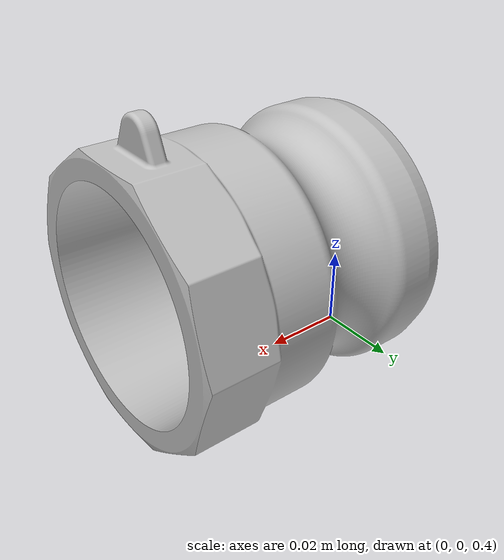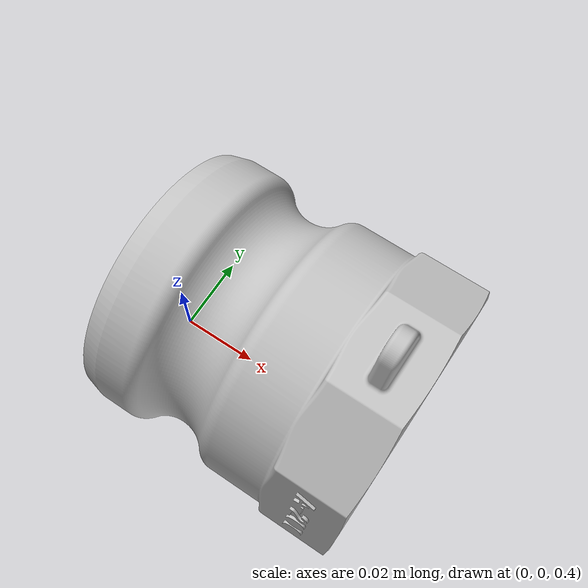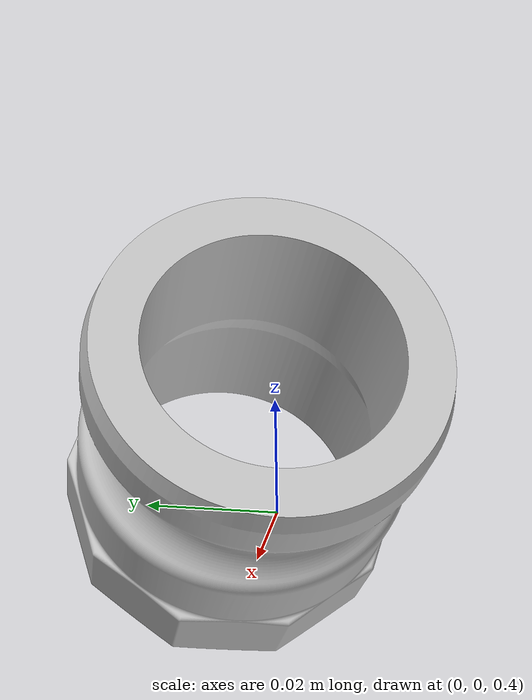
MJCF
<mujoco model="table_with_stl">
      <option gravity="0 0 0" />
  <compiler angle="degree" coordinate="local" />

  <asset>
    <!-- STL mesh — scale 0.001 assumes STL is in mm; adjust if needed -->
    <mesh name="mesh_A" file="../A-200MAOPI.stl" scale="0.001 0.001 0.001" />
    <!-- Table surface texture -->
    <texture name="tex_table" type="2d" builtin="checker" width="512" height="512"
             rgb1="0.55 0.45 0.35" rgb2="0.65 0.55 0.45" />
    <material name="mat_table" texture="tex_table" reflectance="0.05" />

    <!-- Floor texture -->
    <texture name="tex_floor" type="2d" builtin="checker" width="512" height="512"
             rgb1="0.25 0.25 0.25" rgb2="0.45 0.45 0.45" />
    <material name="mat_floor" texture="tex_floor" reflectance="0.1" />
  </asset>

  <worldbody>
    <!-- ── Lighting ──────────────────────────────────────────────────── -->
    <light name="key_light" directional="false"
           pos="2 2 3" dir="0 0 -1"
           diffuse="0.85 0.85 0.85" ambient="0.3 0.3 0.3" specular="0.2 0.2 0.2"
           castshadow="true" />

    <light name="fill_light" directional="false"
           pos="-1 1 2" dir="0 0 -1"
           diffuse="0.4 0.4 0.5" ambient="0.15 0.15 0.2" specular="0.1 0.1 0.1"
           castshadow="false" />

    <!-- ── Floor ─────────────────────────────────────────────────────── -->
    <geom name="floor" type="plane" pos="0 0 0" size="3 3 0.1" material="mat_floor" />

    <!-- ── Table ─────────────────────────────────────────────────────── -->
    <!-- Table top at z=0.4m, dimensions 1.0m x 0.8m x 0.025m -->

    <!-- ── STL Object ────────────────────────────────────────────────── -->
    <body name="obj_1" pos="0.0 0.0 0.43">
      <geom name="obj_1_geom" type="mesh" mesh="mesh_A"
            rgba="0.75 0.75 0.75 1" />
    </body>

    <!-- ── Movable camera body (no joint — controlled via body_pos / body_quat) ── -->
    <body name="cam_body" pos="0.3 0.3 0.6">
      <inertial pos="0 0 0" mass="0.01" diaginertia="1e-6 1e-6 1e-6"/>
      <camera name="align_cam" pos="0 0 0" quat="1 0 0 0" fovy="60" />
    </body>

    <!-- ── Fixed reference cameras ────────────────────────────────────── -->
    <camera name="cam_front" mode="fixed"
            pos="0 1.2 1.0" quat="0.55 0.45 0.45 0.55"
            fovy="50" />

    <camera name="cam_top" mode="fixed"
            pos="0 0 2.5" quat="0.707 0.707 0 0"
            fovy="45" />

    <camera name="cam_side" mode="fixed"
            pos="1.5 0 0.8" quat="0.5 0.5 0.5 0.5"
            fovy="50" />

  </worldbody>

</mujoco>
